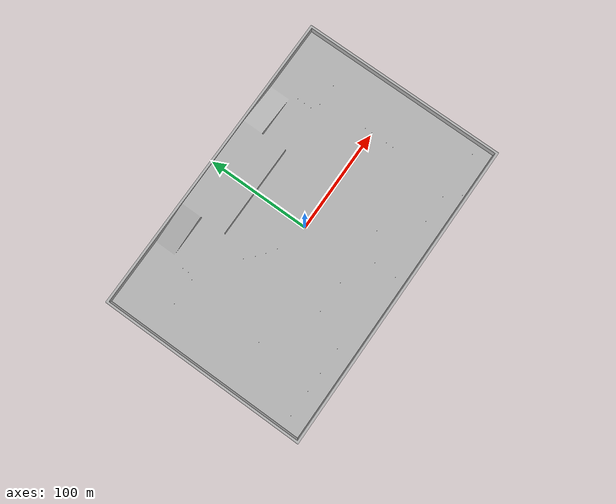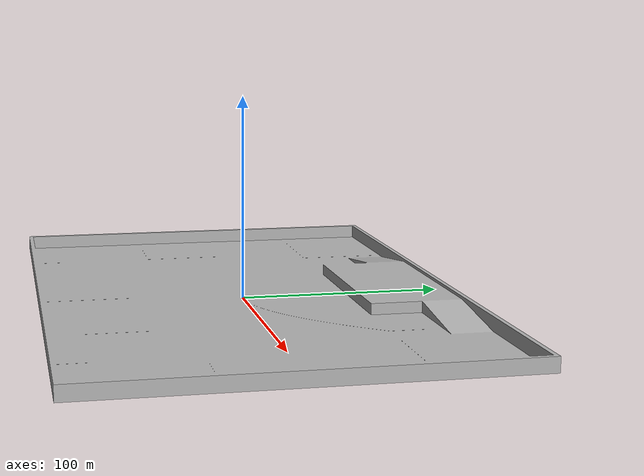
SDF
<?xml version="1.0" ?>
<sdf version="1.6">
  <model name="playmat">
    <static>true</static>
    <link name="link">
      <visual name="visual">
        <geometry>
          <mesh>
            <uri>model://playmat/meshes/playmat_.stl</uri>
            <scale>0.1 0.1 0.1</scale>
          </mesh>
        </geometry>
      </visual>
    </link>
  </model>
</sdf>
